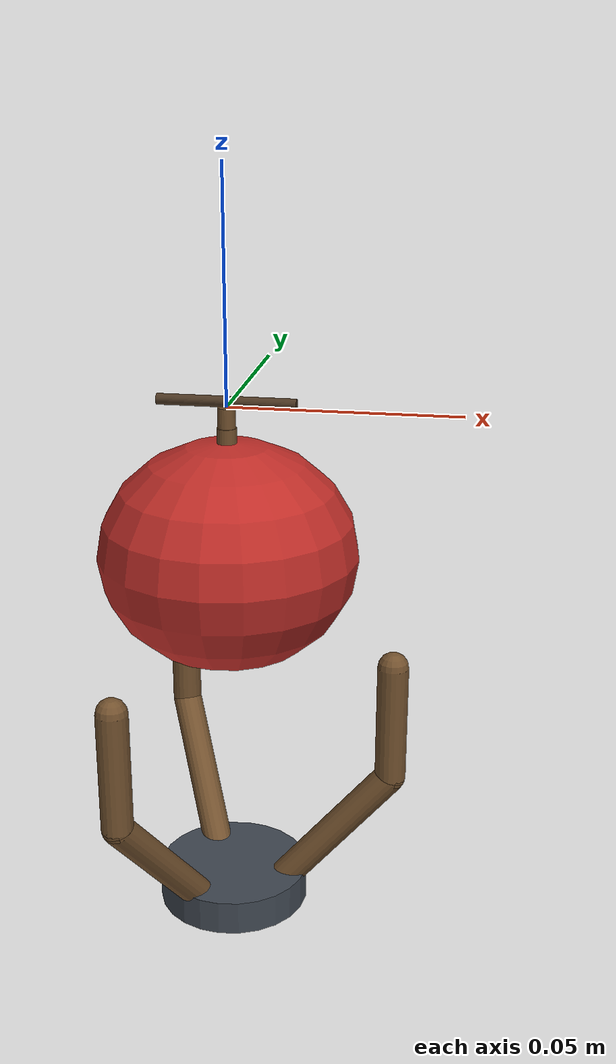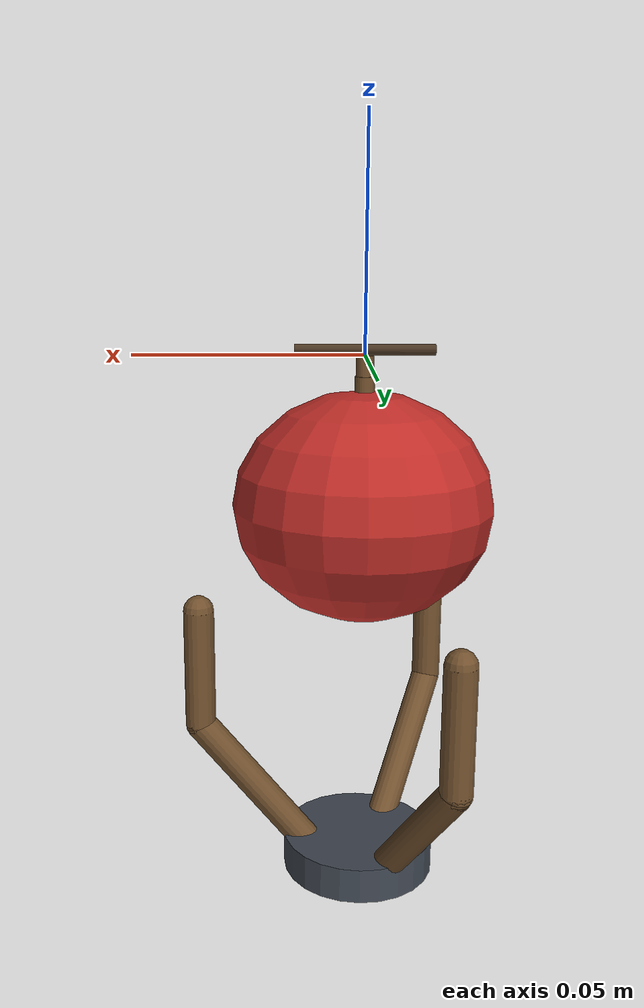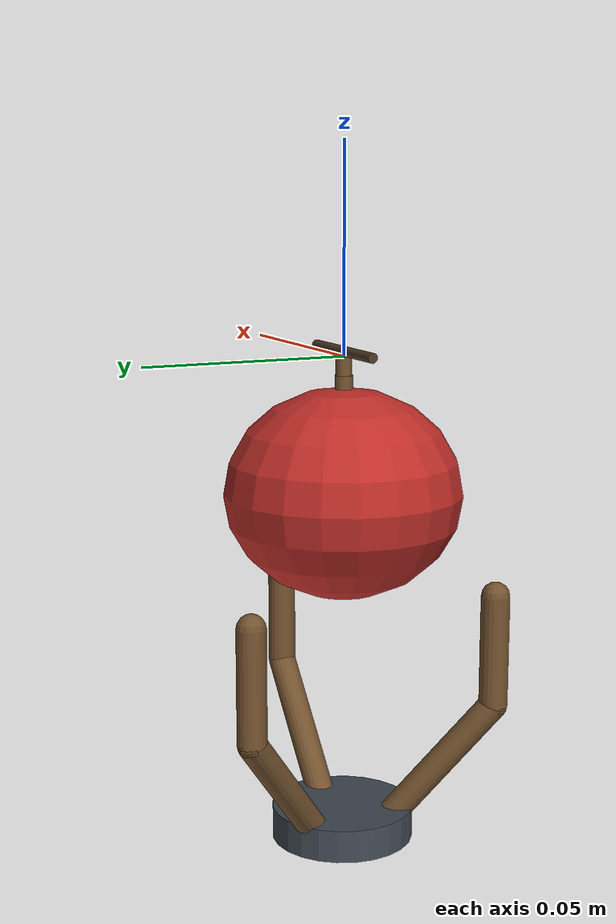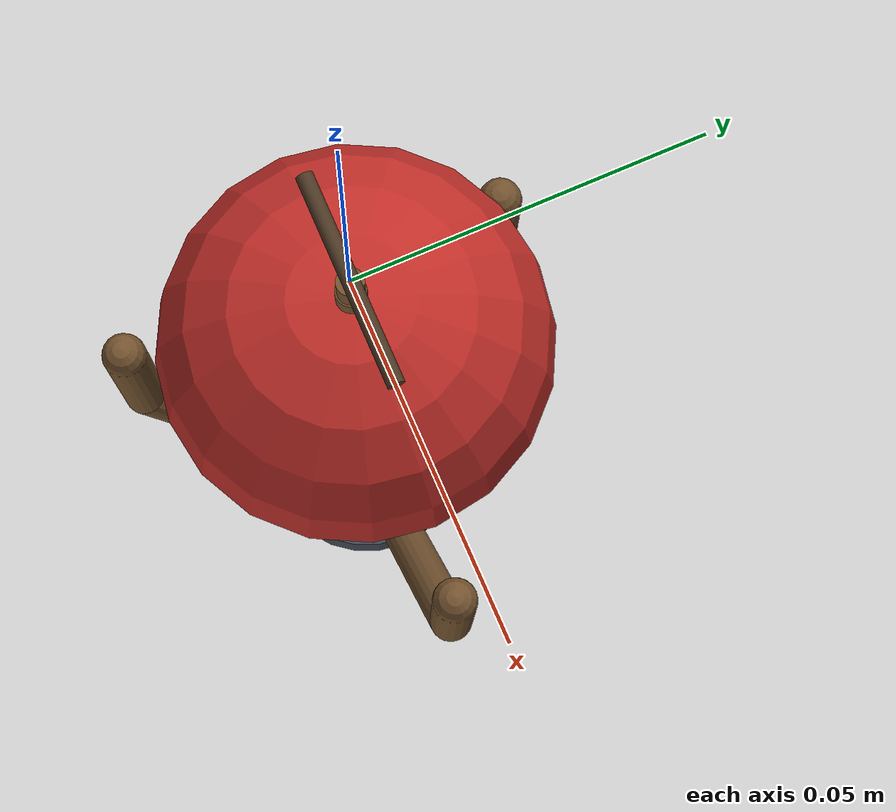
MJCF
<mujoco model="aipick_grasp_scene_slip">

  <compiler angle="radian" autolimits="true"/>

  <option timestep="0.0041666667" gravity="0 0 -9.81" integrator="Euler">
    <!-- contacts are ON from stage 4 -->
  </option>

  <default>
    <geom rgba="0.45 0.32 0.18 1"/>
    <joint type="ball" stiffness="0.030" damping="0.0015"/>
  </default>

  <worldbody>
    <light pos="0 0 0.3" dir="0 0 -1"/>

    <geom name="spur" type="cylinder" fromto="-0.015 0 0.0012  0.015 0 0.0012"
          size="0.0012" rgba="0.30 0.22 0.14 1"/>

    <body name="seg4" pos="0 0 0">
      <site name="s_az" pos="0 0 0" size="0.0006" rgba="1 0.4 0 1"/>
      <joint name="j_az_x" type="hinge" axis="1 0 0" stiffness="0" damping="0.0015"/>
      <joint name="j_az_y" type="hinge" axis="0 1 0" stiffness="0" damping="0.0015"/>
      <joint name="j_az_t" type="hinge" axis="0 0 1" stiffness="0.021" damping="0.0015"/>
      <inertial pos="0 0 -0.00222525" mass="0.020" diaginertia="2e-5 2e-5 1e-5"/>
      <geom name="g4" type="cylinder" fromto="0 0 0  0 0 -0.0044505" size="0.00192"/>

      <body name="seg3" pos="0 0 -0.0044505">
        <joint name="j_in4"/>
        <inertial pos="0 0 -0.00222525" mass="0.020" diaginertia="2e-5 2e-5 1e-5"/>
        <geom name="g3" type="cylinder" fromto="0 0 0  0 0 -0.0044505" size="0.00216"/>

        <body name="seg2" pos="0 0 -0.0044505">
          <joint name="j_in3"/>
          <inertial pos="0 0 -0.00222525" mass="0.020" diaginertia="2e-5 2e-5 1e-5"/>
          <geom name="g2" type="cylinder" fromto="0 0 0  0 0 -0.0044505" size="0.00240"/>

          <body name="seg1" pos="0 0 -0.0044505">
            <joint name="j_in2"/>
            <inertial pos="0 0 -0.00222525" mass="0.020" diaginertia="2e-5 2e-5 1e-5"/>
            <geom name="g1" type="cylinder" fromto="0 0 0  0 0 -0.0044505" size="0.00264"/>

            <body name="seg0" pos="0 0 -0.0044505">
              <joint name="j_in1"/>
              <inertial pos="0 0 -0.00222525" mass="0.020" diaginertia="2e-5 2e-5 1e-5"/>
              <geom name="g0" type="cylinder" fromto="0 0 0  0 0 -0.0044505" size="0.00288"/>

              <body name="fruit" pos="0 0 -0.01495">
                <site name="s_stem" pos="0 0 0.01495" size="0.0008" rgba="1 0 0 1"/>
                <inertial pos="0 0 0" mass="0.0735807337962370"
                          diaginertia="2.15835e-5 2.15835e-5 2.43276e-5"/>
                <geom name="apple" type="ellipsoid" size="0.02875 0.02875 0.02530"
                      condim="4" priority="1" friction="0.45 0.005 0"
                      rgba="0.75 0.18 0.16 1"/>
              </body>
            </body>
          </body>
        </body>
      </body>
    </body>

    <body name="palm" pos="0 0 -0.12">
      <freejoint name="wrist"/>
      <site name="s_palm" pos="0 0 0" size="0.001" rgba="0 1 1 1"/>
      <inertial pos="0 0 0.004" mass="0.300" diaginertia="1e-2 1e-2 1e-2"/>
      <geom name="gbase" type="cylinder" fromto="0 0 0  0 0 0.008" size="0.017425"
            rgba="0.25 0.28 0.32 1" mass="0"/>
      <body name="lo0" pos="0.010925 0 0.004" quat="0.939692621 -0 0.342020143 0">
        <joint name="fj0" type="hinge" axis="0 -1 -0" range="0 1.2" damping="0.002" armature="1e-5"/>
        <geom name="glo0" type="capsule" fromto="0 0 0  0 0 0.04025" size="0.0035" mass="0.004"/>
        <body name="up0" pos="0 0 0.04025" quat="0.939692621 0 -0.342020143 -0">
          <geom name="gup0" type="capsule" fromto="0 0 0  0 0 0.0276" size="0.0035" mass="0.003"/>
        </body>
      </body>
      <body name="lo1" pos="-0.0054625 0.00946132754 0.004" quat="0.939692621 -0.296198133 -0.171010072 0">
        <joint name="fj1" type="hinge" axis="0.866025404 0.5 -0" range="0 1.2" damping="0.002" armature="1e-5"/>
        <geom name="glo1" type="capsule" fromto="0 0 0  0 0 0.04025" size="0.0035" mass="0.004"/>
        <body name="up1" pos="0 0 0.04025" quat="0.939692621 0.296198133 0.171010072 -0">
          <geom name="gup1" type="capsule" fromto="0 0 0  0 0 0.0276" size="0.0035" mass="0.003"/>
        </body>
      </body>
      <body name="lo2" pos="-0.0054625 -0.00946132754 0.004" quat="0.939692621 0.296198133 -0.171010072 0">
        <joint name="fj2" type="hinge" axis="-0.866025404 0.5 -0" range="0 1.2" damping="0.002" armature="1e-5"/>
        <geom name="glo2" type="capsule" fromto="0 0 0  0 0 0.04025" size="0.0035" mass="0.004"/>
        <body name="up2" pos="0 0 0.04025" quat="0.939692621 -0.296198133 0.171010072 -0">
          <geom name="gup2" type="capsule" fromto="0 0 0  0 0 0.0276" size="0.0035" mass="0.003"/>
        </body>
      </body>
    </body>
  </worldbody>

  <contact>
    <exclude body1="fruit" body2="seg0"/>
    <exclude body1="fruit" body2="seg1"/>
    <exclude body1="fruit" body2="seg2"/>
    <exclude body1="fruit" body2="seg3"/>
    <exclude body1="fruit" body2="seg4"/>

    <exclude body1="palm" body2="lo0"/>
    <exclude body1="palm" body2="lo1"/>
    <exclude body1="palm" body2="lo2"/>
    <exclude body1="palm" body2="up0"/>
    <exclude body1="palm" body2="up1"/>
    <exclude body1="palm" body2="up2"/>

    <!-- seg4 is joined to the spur at the abscission point; their geoms touch there
         by construction. -->
    <exclude body1="world" body2="seg4"/>
  </contact>

  <actuator>
    <position name="a_fj0" joint="fj0" kp="0.6" ctrlrange="0 1.2" forcerange="-1.5 1.5"/>
    <position name="a_fj1" joint="fj1" kp="0.6" ctrlrange="0 1.2" forcerange="-1.5 1.5"/>
    <position name="a_fj2" joint="fj2" kp="0.6" ctrlrange="0 1.2" forcerange="-1.5 1.5"/>
  </actuator>

  <sensor>
    <!-- Forces. Two junctions, two different readings - see the note above. -->
    <force name="f_stem" site="s_stem"/>
    <force name="f_az"   site="s_az"/>

    <framezaxis name="ax4" objtype="body" objname="seg4"/>
    <framezaxis name="ax3" objtype="body" objname="seg3"/>
    <framezaxis name="ax2" objtype="body" objname="seg2"/>
    <framezaxis name="ax1" objtype="body" objname="seg1"/>
    <framezaxis name="ax0" objtype="body" objname="seg0"/>

    <!-- Fruit orientation, for the twist. The abscission twist is measured on the
         FRUIT, at the far end of the chain from where the bend is measured. -->
    <framequat name="q_fruit" objtype="body" objname="fruit"/>
    <framequat name="q_palm"  objtype="body" objname="palm"/>
  </sensor>
</mujoco>
